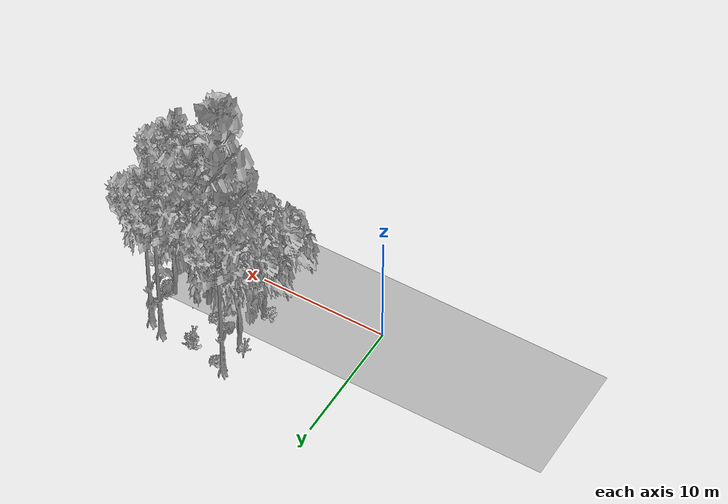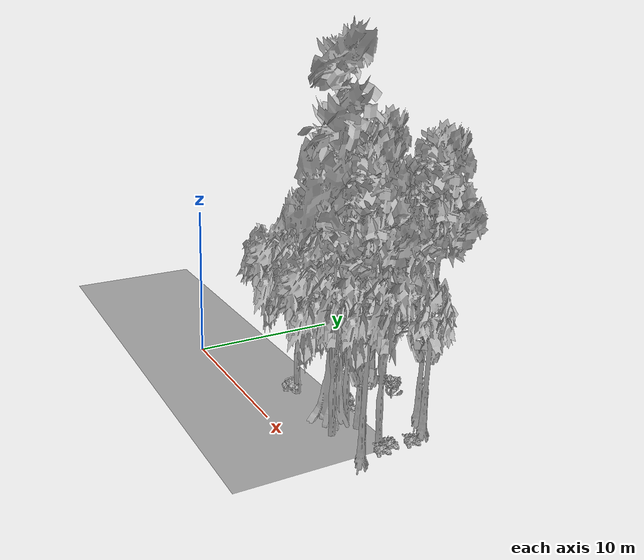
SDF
<sdf version="1.7">
 <world name="default">
  <model name="ground_plane">
   <static>1</static>
   <link name="link">
    <collision name="collision">
     <geometry><plane><normal>0 0 1</normal><size>100 100</size></plane></geometry>
     <surface><contact><ode><min_depth>0.01</min_depth><max_vel>0</max_vel></ode></contact></surface>
    </collision>
    <visual name="grass">
     <cast_shadows>0</cast_shadows>
     <geometry>
      <mesh>
       <scale>0.5814285714285714 0.18142857142857144 0.1</scale>
       <uri>file://grass_plane/meshes/grass_plane.dae</uri>
      </mesh>
     </geometry>
    </visual>
   </link>
  </model>
  <model name="Tree 3">
   <static>1</static>
   <pose>8.2996810708756 5.9657496222839335 0 1.57079 -0 0</pose>
   <link name="link">
    <collision name="collision">
     <geometry><mesh><scale>3.5 5 3.5</scale><uri>model://tree_2/meshes/tree_2.obj</uri></mesh></geometry>
    </collision>
    <visual name="visual">
     <geometry><mesh><scale>3.5 5 3.5</scale><uri>model://tree_2/meshes/tree_2.obj</uri></mesh></geometry>
    </visual>
   </link>
  </model>
  <model name="Tree 91">
   <static>1</static>
   <pose>11.551569176275564 3.4701933039161332 0 1.57079 -0 0</pose>
   <link name="link">
    <collision name="collision">
     <geometry><mesh><scale>3.5 5 3.5</scale><uri>model://tree_4/meshes/tree_4.obj</uri></mesh></geometry>
    </collision>
    <visual name="visual">
     <geometry><mesh><scale>3.5 5 3.5</scale><uri>model://tree_4/meshes/tree_4.obj</uri></mesh></geometry>
    </visual>
   </link>
  </model>
  <model name="Tree 107">
   <static>1</static>
   <pose>13.184562545682013 4.21230943299334 0 1.57079 -0 0</pose>
   <link name="link">
    <collision name="collision">
     <geometry><mesh><scale>3.5 5 3.5</scale><uri>model://tree_9/meshes/tree_9.obj</uri></mesh></geometry>
    </collision>
    <visual name="visual">
     <geometry><mesh><scale>3.5 5 3.5</scale><uri>model://tree_9/meshes/tree_9.obj</uri></mesh></geometry>
    </visual>
   </link>
  </model>
  <model name="Tree 140">
   <static>1</static>
   <pose>14.835946040295532 4.417577679474395 0 1.57079 -0 0</pose>
   <link name="link">
    <collision name="collision">
     <geometry><mesh><scale>3.5 5 3.5</scale><uri>model://tree_2/meshes/tree_2.obj</uri></mesh></geometry>
    </collision>
    <visual name="visual">
     <geometry><mesh><scale>3.5 5 3.5</scale><uri>model://tree_2/meshes/tree_2.obj</uri></mesh></geometry>
    </visual>
   </link>
  </model>
  <model name="Tree 193">
   <static>1</static>
   <pose>8.122634041325298 2.998190376981576 0 1.57079 -0 0</pose>
   <link name="link">
    <collision name="collision">
     <geometry><mesh><scale>3.5 5 3.5</scale><uri>model://tree_2/meshes/tree_2.obj</uri></mesh></geometry>
    </collision>
    <visual name="visual">
     <geometry><mesh><scale>3.5 5 3.5</scale><uri>model://tree_2/meshes/tree_2.obj</uri></mesh></geometry>
    </visual>
   </link>
  </model>
  <model name="Tree 222">
   <static>1</static>
   <pose>15.832885890118405 2.662728861379147 0 1.57079 -0 0</pose>
   <link name="link">
    <collision name="collision">
     <geometry><mesh><scale>3.5 5 3.5</scale><uri>model://tree_9/meshes/tree_9.obj</uri></mesh></geometry>
    </collision>
    <visual name="visual">
     <geometry><mesh><scale>3.5 5 3.5</scale><uri>model://tree_9/meshes/tree_9.obj</uri></mesh></geometry>
    </visual>
   </link>
  </model>
  <model name="Tree 285">
   <static>1</static>
   <pose>12.233821655327134 3.9227211742769157 0 1.57079 -0 0</pose>
   <link name="link">
    <collision name="collision">
     <geometry><mesh><scale>3.5 5 3.5</scale><uri>model://tree_2/meshes/tree_2.obj</uri></mesh></geometry>
    </collision>
    <visual name="visual">
     <geometry><mesh><scale>3.5 5 3.5</scale><uri>model://tree_2/meshes/tree_2.obj</uri></mesh></geometry>
    </visual>
   </link>
  </model>
  <model name="Tree 299">
   <static>1</static>
   <pose>13.76090914183547 8.019555885771549 0 1.57079 -0 0</pose>
   <link name="link">
    <collision name="collision">
     <geometry><mesh><scale>3.5 5 3.5</scale><uri>model://tree_9/meshes/tree_9.obj</uri></mesh></geometry>
    </collision>
    <visual name="visual">
     <geometry><mesh><scale>3.5 5 3.5</scale><uri>model://tree_9/meshes/tree_9.obj</uri></mesh></geometry>
    </visual>
   </link>
  </model>
  <model name="Tree 304">
   <static>1</static>
   <pose>13.130502318589564 2.4148494504325733 0 1.57079 -0 0</pose>
   <link name="link">
    <collision name="collision">
     <geometry><mesh><scale>3.5 5 3.5</scale><uri>model://tree_2/meshes/tree_2.obj</uri></mesh></geometry>
    </collision>
    <visual name="visual">
     <geometry><mesh><scale>3.5 5 3.5</scale><uri>model://tree_2/meshes/tree_2.obj</uri></mesh></geometry>
    </visual>
   </link>
  </model>
  <model name="Tree 364">
   <static>1</static>
   <pose>8.108154982898725 8.640884791405234 0 1.57079 -0 0</pose>
   <link name="link">
    <collision name="collision">
     <geometry><mesh><scale>3.5 5 3.5</scale><uri>model://tree_9/meshes/tree_9.obj</uri></mesh></geometry>
    </collision>
    <visual name="visual">
     <geometry><mesh><scale>3.5 5 3.5</scale><uri>model://tree_9/meshes/tree_9.obj</uri></mesh></geometry>
    </visual>
   </link>
  </model>
  <model name="Tree 397">
   <static>1</static>
   <pose>14.985820959346448 7.429697927408277 0 1.57079 -0 0</pose>
   <link name="link">
    <collision name="collision">
     <geometry><mesh><scale>3.5 5 3.5</scale><uri>model://tree_9/meshes/tree_9.obj</uri></mesh></geometry>
    </collision>
    <visual name="visual">
     <geometry><mesh><scale>3.5 5 3.5</scale><uri>model://tree_9/meshes/tree_9.obj</uri></mesh></geometry>
    </visual>
   </link>
  </model>
  <model name="Bush 49">
   <static>1</static>
   <pose>15.460835663041053 4.765976834384254 0 1.57079 -0 0</pose>
   <link name="link">
    <collision name="collision">
     <geometry><mesh><scale>2 2 2</scale><uri>model://bush_2/meshes/bush_2.obj</uri></mesh></geometry>
     <surface><contact><collide_without_contact>false</collide_without_contact></contact></surface>
    </collision>
    <visual name="visual">
     <geometry><mesh><scale>2 2 2</scale><uri>model://bush_2/meshes/bush_2.obj</uri></mesh></geometry>
    </visual>
   </link>
  </model>
  <model name="Bush 106">
   <static>1</static>
   <pose>11.074514319311668 4.896949739724853 0 1.57079 -0 0</pose>
   <link name="link">
    <collision name="collision">
     <geometry><mesh><scale>2 2 2</scale><uri>model://bush_2/meshes/bush_2.obj</uri></mesh></geometry>
     <surface><contact><collide_without_contact>false</collide_without_contact></contact></surface>
    </collision>
    <visual name="visual">
     <geometry><mesh><scale>2 2 2</scale><uri>model://bush_2/meshes/bush_2.obj</uri></mesh></geometry>
    </visual>
   </link>
  </model>
  <model name="Bush 121">
   <static>1</static>
   <pose>7.913293804274652 2.8599835706907406 0 1.57079 -0 0</pose>
   <link name="link">
    <collision name="collision">
     <geometry><mesh><scale>2 2 2</scale><uri>model://bush_3/meshes/bush_3.obj</uri></mesh></geometry>
     <surface><contact><collide_without_contact>false</collide_without_contact></contact></surface>
    </collision>
    <visual name="visual">
     <geometry><mesh><scale>2 2 2</scale><uri>model://bush_3/meshes/bush_3.obj</uri></mesh></geometry>
    </visual>
   </link>
  </model>
  <model name="Bush 125">
   <static>1</static>
   <pose>10.972862772626257 8.081128860672912 0 1.57079 -0 0</pose>
   <link name="link">
    <collision name="collision">
     <geometry><mesh><scale>2 2 2</scale><uri>model://bush_4/meshes/bush_4.obj</uri></mesh></geometry>
     <surface><contact><collide_without_contact>false</collide_without_contact></contact></surface>
    </collision>
    <visual name="visual">
     <geometry><mesh><scale>2 2 2</scale><uri>model://bush_4/meshes/bush_4.obj</uri></mesh></geometry>
    </visual>
   </link>
  </model>
  <model name="Bush 157">
   <static>1</static>
   <pose>15.706781728819436 4.064898333910136 0 1.57079 -0 0</pose>
   <link name="link">
    <collision name="collision">
     <geometry><mesh><scale>2 2 2</scale><uri>model://bush_2/meshes/bush_2.obj</uri></mesh></geometry>
     <surface><contact><collide_without_contact>false</collide_without_contact></contact></surface>
    </collision>
    <visual name="visual">
     <geometry><mesh><scale>2 2 2</scale><uri>model://bush_2/meshes/bush_2.obj</uri></mesh></geometry>
    </visual>
   </link>
  </model>
  <model name="Bush 174">
   <static>1</static>
   <pose>11.277902271673625 7.943946923712762 0 1.57079 -0 0</pose>
   <link name="link">
    <collision name="collision">
     <geometry><mesh><scale>2 2 2</scale><uri>model://bush_5/meshes/bush_5.obj</uri></mesh></geometry>
     <surface><contact><collide_without_contact>false</collide_without_contact></contact></surface>
    </collision>
    <visual name="visual">
     <geometry><mesh><scale>2 2 2</scale><uri>model://bush_5/meshes/bush_5.obj</uri></mesh></geometry>
    </visual>
   </link>
  </model>
  <model name="Bush 177">
   <static>1</static>
   <pose>10.045519862639814 5.393601179412851 0 1.57079 -0 0</pose>
   <link name="link">
    <collision name="collision">
     <geometry><mesh><scale>2 2 2</scale><uri>model://bush_2/meshes/bush_2.obj</uri></mesh></geometry>
     <surface><contact><collide_without_contact>false</collide_without_contact></contact></surface>
    </collision>
    <visual name="visual">
     <geometry><mesh><scale>2 2 2</scale><uri>model://bush_2/meshes/bush_2.obj</uri></mesh></geometry>
    </visual>
   </link>
  </model>
  <model name="Bush 178">
   <static>1</static>
   <pose>8.905178968407427 8.208613127980978 0 1.57079 -0 0</pose>
   <link name="link">
    <collision name="collision">
     <geometry><mesh><scale>2 2 2</scale><uri>model://bush_2/meshes/bush_2.obj</uri></mesh></geometry>
     <surface><contact><collide_without_contact>false</collide_without_contact></contact></surface>
    </collision>
    <visual name="visual">
     <geometry><mesh><scale>2 2 2</scale><uri>model://bush_2/meshes/bush_2.obj</uri></mesh></geometry>
    </visual>
   </link>
  </model>
  <model name="Bush 286">
   <static>1</static>
   <pose>12.082682938610489 3.5820088073463623 0 1.57079 -0 0</pose>
   <link name="link">
    <collision name="collision">
     <geometry><mesh><scale>2 2 2</scale><uri>model://bush_2/meshes/bush_2.obj</uri></mesh></geometry>
     <surface><contact><collide_without_contact>false</collide_without_contact></contact></surface>
    </collision>
    <visual name="visual">
     <geometry><mesh><scale>2 2 2</scale><uri>model://bush_2/meshes/bush_2.obj</uri></mesh></geometry>
    </visual>
   </link>
  </model>
  <model name="Bush 293">
   <static>1</static>
   <pose>7.474681179100884 6.979382827009221 0 1.57079 -0 0</pose>
   <link name="link">
    <collision name="collision">
     <geometry><mesh><scale>2 2 2</scale><uri>model://bush_5/meshes/bush_5.obj</uri></mesh></geometry>
     <surface><contact><collide_without_contact>false</collide_without_contact></contact></surface>
    </collision>
    <visual name="visual">
     <geometry><mesh><scale>2 2 2</scale><uri>model://bush_5/meshes/bush_5.obj</uri></mesh></geometry>
    </visual>
   </link>
  </model>
  <model name="Bush 302">
   <static>1</static>
   <pose>15.694412264401208 6.076725083620879 0 1.57079 -0 0</pose>
   <link name="link">
    <collision name="collision">
     <geometry><mesh><scale>2 2 2</scale><uri>model://bush_2/meshes/bush_2.obj</uri></mesh></geometry>
     <surface><contact><collide_without_contact>false</collide_without_contact></contact></surface>
    </collision>
    <visual name="visual">
     <geometry><mesh><scale>2 2 2</scale><uri>model://bush_2/meshes/bush_2.obj</uri></mesh></geometry>
    </visual>
   </link>
  </model>
 </world>
</sdf>
